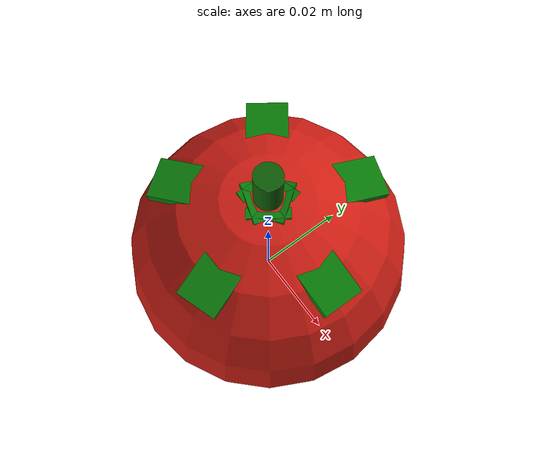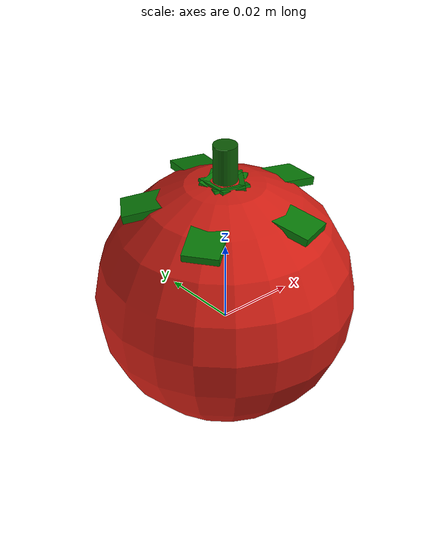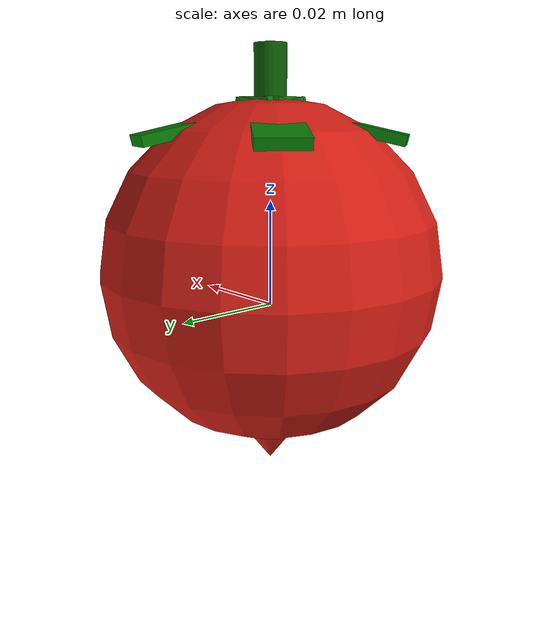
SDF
<?xml version="1.0"?>
<sdf version="1.10">
  <model name="strawberry_ripe_realistic_v4">
    <static>false</static>
    <self_collide>false</self_collide>
    <link name="fruit_link">
      <gravity>false</gravity>
      <velocity_decay><linear>0.5</linear><angular>0.5</angular></velocity_decay>
      <inertial>
        <mass>0.030</mass>
        <inertia><ixx>0.0000147</ixx><iyy>0.0000147</iyy><izz>0.0000147</izz></inertia>
      </inertial>
      <!-- Keep physics identical to A/B; only the visual asset changes. -->
      <collision name="fruit_collision">
        <geometry><sphere><radius>0.035</radius></sphere></geometry>
        <surface><friction><ode><mu>1.0</mu><mu2>1.0</mu2></ode></friction></surface>
      </collision>
      <visual name="fruit_crown_visual">
        <pose>0 0 0.007 0 0 0</pose>
        <geometry><sphere><radius>0.032</radius></sphere></geometry>
        <material>
          <ambient>0.45 0.04 0.03 1</ambient><diffuse>0.82 0.12 0.08 1</diffuse>
          <specular>0.08 0.08 0.08 1</specular>
          <pbr><metal>
            <albedo_map>materials/textures/ripe_strawberry_skin_v2.png</albedo_map>
            <metalness>0.0</metalness><roughness>0.58</roughness>
          </metal></pbr>
        </material>
      </visual>
      <visual name="fruit_tip_visual">
        <pose>0 0 -0.012 3.141592654 0 0</pose>
        <geometry><cone><radius>0.030</radius><length>0.040</length></cone></geometry>
        <material>
          <ambient>0.45 0.04 0.03 1</ambient><diffuse>0.82 0.12 0.08 1</diffuse>
          <specular>0.08 0.08 0.08 1</specular>
          <pbr><metal>
            <albedo_map>materials/textures/ripe_strawberry_skin_v2.png</albedo_map>
            <metalness>0.0</metalness><roughness>0.58</roughness>
          </metal></pbr>
        </material>
      </visual>
      <visual name="calyx_leaf_1"><pose>0.01000 0.00000 0.0345 0 0.22 0.000000</pose><geometry><box><size>0.030 0.009 0.002</size></box></geometry><material><ambient>0.01 0.22 0.01 1</ambient><diffuse>0.03 0.48 0.03 1</diffuse></material></visual>
      <visual name="calyx_leaf_2"><pose>0.00309 0.00951 0.0345 0 0.22 1.256637</pose><geometry><box><size>0.030 0.009 0.002</size></box></geometry><material><ambient>0.01 0.22 0.01 1</ambient><diffuse>0.03 0.48 0.03 1</diffuse></material></visual>
      <visual name="calyx_leaf_3"><pose>-0.00809 0.00588 0.0345 0 0.22 2.513274</pose><geometry><box><size>0.030 0.009 0.002</size></box></geometry><material><ambient>0.01 0.22 0.01 1</ambient><diffuse>0.03 0.48 0.03 1</diffuse></material></visual>
      <visual name="calyx_leaf_4"><pose>-0.00809 -0.00588 0.0345 0 0.22 3.769911</pose><geometry><box><size>0.030 0.009 0.002</size></box></geometry><material><ambient>0.01 0.22 0.01 1</ambient><diffuse>0.03 0.48 0.03 1</diffuse></material></visual>
      <visual name="calyx_leaf_5"><pose>0.00309 -0.00951 0.0345 0 0.22 5.026548</pose><geometry><box><size>0.030 0.009 0.002</size></box></geometry><material><ambient>0.01 0.22 0.01 1</ambient><diffuse>0.03 0.48 0.03 1</diffuse></material></visual>
      <visual name="stem_visual"><pose>0 0 0.041 0 0 0</pose><geometry><cylinder><radius>0.003</radius><length>0.014</length></cylinder></geometry><material><ambient>0.02 0.16 0.01 1</ambient><diffuse>0.05 0.36 0.02 1</diffuse></material></visual>
      <sensor name="fruit_contact_sensor" type="contact">
        <always_on>true</always_on><update_rate>100</update_rate>
        <contact><collision>fruit_collision</collision><topic>/strawberry/sim/fruit_contacts</topic></contact>
      </sensor>
    </link>
    <plugin filename="gz-sim-pose-publisher-system" name="gz::sim::systems::PosePublisher">
      <publish_link_pose>false</publish_link_pose><publish_visual_pose>false</publish_visual_pose>
      <publish_collision_pose>false</publish_collision_pose><publish_sensor_pose>false</publish_sensor_pose>
      <publish_model_pose>true</publish_model_pose><use_pose_vector_msg>true</use_pose_vector_msg>
      <update_frequency>60</update_frequency>
    </plugin>
  </model>
</sdf>
